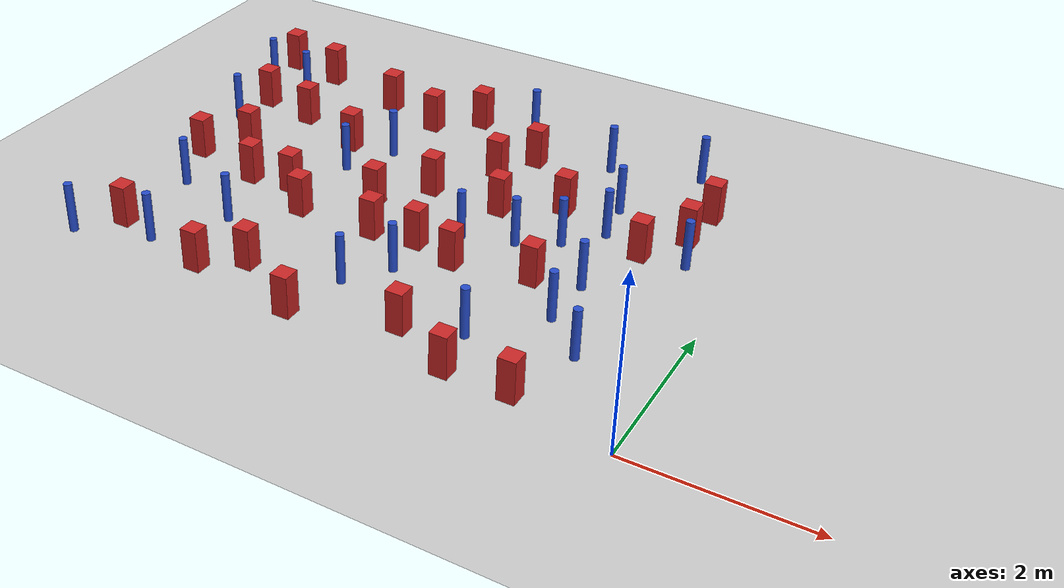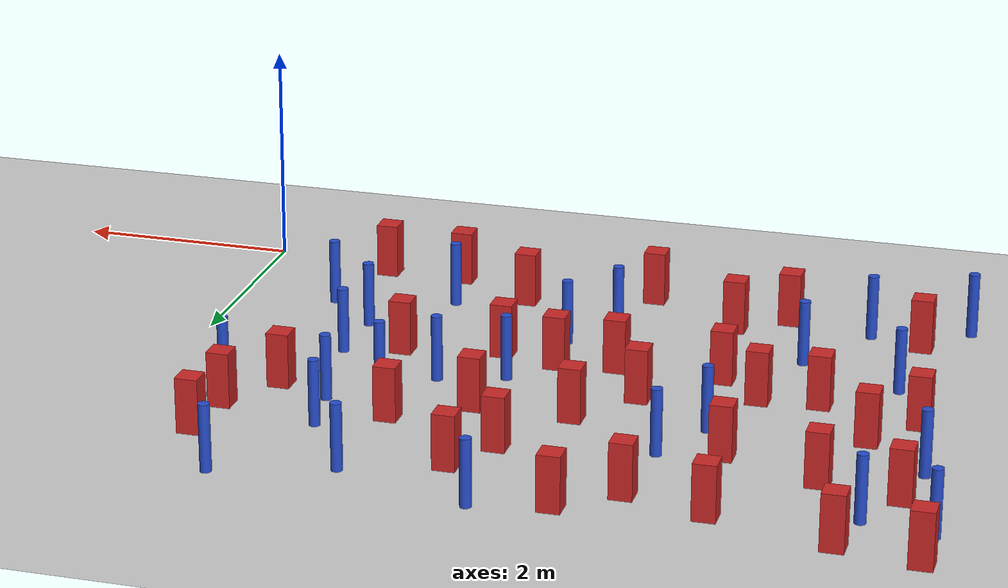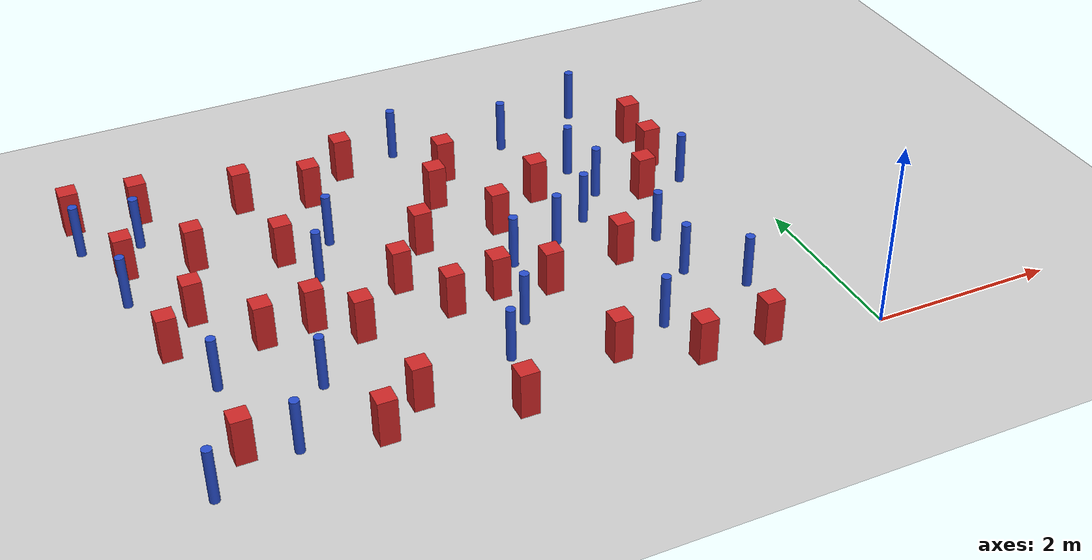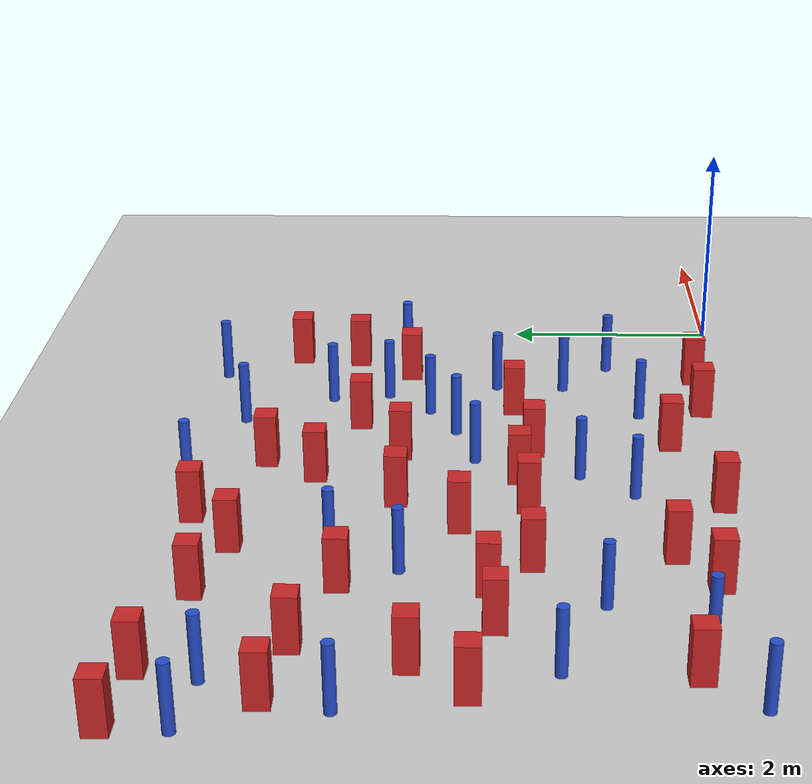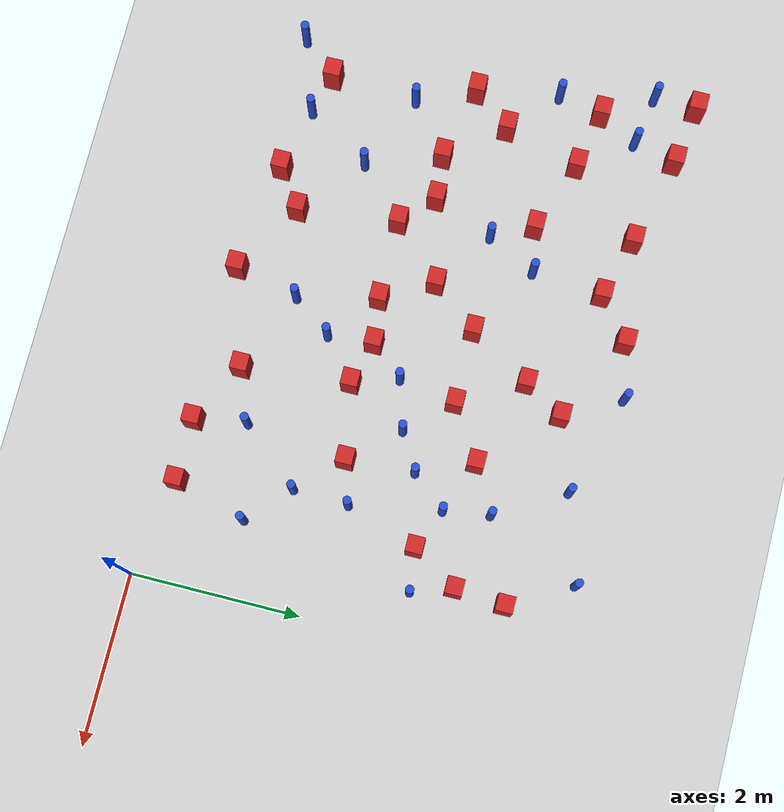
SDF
<sdf version="1.6">
 <world name="default">
  <model name="ground_plane">
   <static>1</static>
   <link name="link">
    <collision name="collision">
     <geometry><plane><normal>0 0 1</normal><size>100 100</size></plane></geometry>
     <surface><friction><ode><mu>100</mu><mu2>50</mu2></ode></friction></surface>
    </collision>
    <visual name="visual">
     <cast_shadows>0</cast_shadows>
     <geometry><plane><normal>0 0 1</normal><size>100 100</size></plane></geometry>
     <material>
      <ambient>1.0 1.0 1.0 1.0</ambient>
      <diffuse>0.8 0.8 0.8 1.0</diffuse>
      <specular>0.01 0.01 0.01 1.000000</specular>
     </material>
    </visual>
   </link>
  </model>
  <model name="square_post_obstacle4">
   <static>true</static>
   <pose>-1.89748749856 0.251138734312 1.91545236811e-07 -7.35059704564e-06 1.12565212e-07 2.39332434364e-05</pose>
   <link name="link">
    <pose>0 0 0.25 0 -0 0</pose>
    <inertial>
     <mass>100</mass>
     <inertia>
      <ixx>0.166667</ixx>
      <ixy>0</ixy>
      <ixz>0</ixz>
      <iyy>0.166667</iyy>
      <iyz>0</iyz>
      <izz>0.166667</izz>
     </inertia>
    </inertial>
    <collision name="collision"><geometry><box><size>.2 .2 .5</size></box></geometry></collision>
    <visual name="visual">
     <geometry><box><size>.2 .2 .5</size></box></geometry>
     <material>
      <script><name>Gazebo/Red</name><uri>file://media/materials/scripts/gazebo.material</uri></script>
     </material>
    </visual>
   </link>
  </model>
  <model name="square_post_obstacle5">
   <static>true</static>
   <pose>-4.62227693699 0.775634140724 1.91545236811e-07 -7.35059704564e-06 1.12565212e-07 2.39332434364e-05</pose>
   <link name="link">
    <pose>0 0 0.25 0 -0 0</pose>
    <inertial>
     <mass>100</mass>
     <inertia>
      <ixx>0.166667</ixx>
      <ixy>0</ixy>
      <ixz>0</ixz>
      <iyy>0.166667</iyy>
      <iyz>0</iyz>
      <izz>0.166667</izz>
     </inertia>
    </inertial>
    <collision name="collision"><geometry><box><size>.2 .2 .5</size></box></geometry></collision>
    <visual name="visual">
     <geometry><box><size>.2 .2 .5</size></box></geometry>
     <material>
      <script><name>Gazebo/Red</name><uri>file://media/materials/scripts/gazebo.material</uri></script>
     </material>
    </visual>
   </link>
  </model>
  <model name="pole_obstacle11">
   <static>true</static>
   <pose>-5.84389258286 0.627708138282 7.38925637345e-09 -8.47170692799e-08 1.24976765038e-08 -1.74513093018e-07</pose>
   <link name="link">
    <pose>0 0 0.3 0 -0 0</pose>
    <inertial>
     <mass>1</mass>
     <inertia><ixx>0.145833</ixx><ixy>0</ixy><ixz>0</ixz><iyy>0.145833</iyy><iyz>0</iyz><izz>0.125</izz></inertia>
    </inertial>
    <collision name="collision">
     <geometry><cylinder><radius>0.05</radius><length>.6</length></cylinder></geometry>
    </collision>
    <visual name="visual">
     <geometry><cylinder><radius>0.05</radius><length>.6</length></cylinder></geometry>
     <material>
      <script><name>Gazebo/Blue</name><uri>file://media/materials/scripts/gazebo.material</uri></script>
     </material>
    </visual>
   </link>
  </model>
  <model name="square_post_obstacle10">
   <static>true</static>
   <pose>-0.731796114299 3.62730903629 1.91545236811e-07 -7.35059704564e-06 1.12565212e-07 2.39332434364e-05</pose>
   <link name="link">
    <pose>0 0 0.25 0 -0 0</pose>
    <inertial>
     <mass>100</mass>
     <inertia>
      <ixx>0.166667</ixx>
      <ixy>0</ixy>
      <ixz>0</ixz>
      <iyy>0.166667</iyy>
      <iyz>0</iyz>
      <izz>0.166667</izz>
     </inertia>
    </inertial>
    <collision name="collision"><geometry><box><size>.2 .2 .5</size></box></geometry></collision>
    <visual name="visual">
     <geometry><box><size>.2 .2 .5</size></box></geometry>
     <material>
      <script><name>Gazebo/Red</name><uri>file://media/materials/scripts/gazebo.material</uri></script>
     </material>
    </visual>
   </link>
  </model>
  <model name="pole_obstacle14">
   <static>true</static>
   <pose>-6.38927039839 4.45445296587 7.38925637345e-09 -8.47170692796e-08 1.24976764786e-08 -1.74513093032e-07</pose>
   <link name="link">
    <pose>0 0 0.3 0 -0 0</pose>
    <inertial>
     <mass>1</mass>
     <inertia><ixx>0.145833</ixx><ixy>0</ixy><ixz>0</ixz><iyy>0.145833</iyy><iyz>0</iyz><izz>0.125</izz></inertia>
    </inertial>
    <collision name="collision">
     <geometry><cylinder><radius>0.05</radius><length>.6</length></cylinder></geometry>
    </collision>
    <visual name="visual">
     <geometry><cylinder><radius>0.05</radius><length>.6</length></cylinder></geometry>
     <material>
      <script><name>Gazebo/Blue</name><uri>file://media/materials/scripts/gazebo.material</uri></script>
     </material>
    </visual>
   </link>
  </model>
  <model name="square_post_obstacle12">
   <static>true</static>
   <pose>-2.81630306043 3.12755223096 1.91545236811e-07 -7.35059704564e-06 1.12565212e-07 2.39332434364e-05</pose>
   <link name="link">
    <pose>0 0 0.25 0 -0 0</pose>
    <inertial>
     <mass>100</mass>
     <inertia>
      <ixx>0.166667</ixx>
      <ixy>0</ixy>
      <ixz>0</ixz>
      <iyy>0.166667</iyy>
      <iyz>0</iyz>
      <izz>0.166667</izz>
     </inertia>
    </inertial>
    <collision name="collision"><geometry><box><size>.2 .2 .5</size></box></geometry></collision>
    <visual name="visual">
     <geometry><box><size>.2 .2 .5</size></box></geometry>
     <material>
      <script><name>Gazebo/Red</name><uri>file://media/materials/scripts/gazebo.material</uri></script>
     </material>
    </visual>
   </link>
  </model>
  <model name="square_post_obstacle14">
   <static>true</static>
   <pose>-3.69880755746 3.13031229309 1.91545236811e-07 -7.35059704564e-06 1.12565212e-07 2.39332434364e-05</pose>
   <link name="link">
    <pose>0 0 0.25 0 -0 0</pose>
    <inertial>
     <mass>100</mass>
     <inertia>
      <ixx>0.166667</ixx>
      <ixy>0</ixy>
      <ixz>0</ixz>
      <iyy>0.166667</iyy>
      <iyz>0</iyz>
      <izz>0.166667</izz>
     </inertia>
    </inertial>
    <collision name="collision"><geometry><box><size>.2 .2 .5</size></box></geometry></collision>
    <visual name="visual">
     <geometry><box><size>.2 .2 .5</size></box></geometry>
     <material>
      <script><name>Gazebo/Red</name><uri>file://media/materials/scripts/gazebo.material</uri></script>
     </material>
    </visual>
   </link>
  </model>
  <model name="pole_obstacle22">
   <static>true</static>
   <pose>-2.11474189386 4.6481504744 7.38925637345e-09 -8.47170692798e-08 1.24976765033e-08 -1.74513093019e-07</pose>
   <link name="link">
    <pose>0 0 0.3 0 -0 0</pose>
    <inertial>
     <mass>1</mass>
     <inertia><ixx>0.145833</ixx><ixy>0</ixy><ixz>0</ixz><iyy>0.145833</iyy><iyz>0</iyz><izz>0.125</izz></inertia>
    </inertial>
    <collision name="collision">
     <geometry><cylinder><radius>0.05</radius><length>.6</length></cylinder></geometry>
    </collision>
    <visual name="visual">
     <geometry><cylinder><radius>0.05</radius><length>.6</length></cylinder></geometry>
     <material>
      <script><name>Gazebo/Blue</name><uri>file://media/materials/scripts/gazebo.material</uri></script>
     </material>
    </visual>
   </link>
  </model>
  <model name="square_post_obstacle19">
   <static>true</static>
   <pose>-4.14506765037 2.57185852221 1.91545236811e-07 -7.35059704564e-06 1.12565212e-07 2.39332434364e-05</pose>
   <link name="link">
    <pose>0 0 0.25 0 -0 0</pose>
    <inertial>
     <mass>100</mass>
     <inertia>
      <ixx>0.166667</ixx>
      <ixy>0</ixy>
      <ixz>0</ixz>
      <iyy>0.166667</iyy>
      <iyz>0</iyz>
      <izz>0.166667</izz>
     </inertia>
    </inertial>
    <collision name="collision"><geometry><box><size>.2 .2 .5</size></box></geometry></collision>
    <visual name="visual">
     <geometry><box><size>.2 .2 .5</size></box></geometry>
     <material>
      <script><name>Gazebo/Red</name><uri>file://media/materials/scripts/gazebo.material</uri></script>
     </material>
    </visual>
   </link>
  </model>
  <model name="square_post_obstacle26">
   <static>true</static>
   <pose>-5.67506805907 2.28028572836 1.91545236811e-07 -7.35059704564e-06 1.12565212e-07 2.39332434364e-05</pose>
   <link name="link">
    <pose>0 0 0.25 0 -0 0</pose>
    <inertial>
     <mass>100</mass>
     <inertia>
      <ixx>0.166667</ixx>
      <ixy>0</ixy>
      <ixz>0</ixz>
      <iyy>0.166667</iyy>
      <iyz>0</iyz>
      <izz>0.166667</izz>
     </inertia>
    </inertial>
    <collision name="collision"><geometry><box><size>.2 .2 .5</size></box></geometry></collision>
    <visual name="visual">
     <geometry><box><size>.2 .2 .5</size></box></geometry>
     <material>
      <script><name>Gazebo/Red</name><uri>file://media/materials/scripts/gazebo.material</uri></script>
     </material>
    </visual>
   </link>
  </model>
  <model name="pole_obstacle39">
   <static>true</static>
   <pose>-3.23078613609 1.49463629291 7.38925637345e-09 -8.47170692796e-08 1.24976764713e-08 -1.74513093037e-07</pose>
   <link name="link">
    <pose>0 0 0.3 0 -0 0</pose>
    <inertial>
     <mass>1</mass>
     <inertia><ixx>0.145833</ixx><ixy>0</ixy><ixz>0</ixz><iyy>0.145833</iyy><iyz>0</iyz><izz>0.125</izz></inertia>
    </inertial>
    <collision name="collision">
     <geometry><cylinder><radius>0.05</radius><length>.6</length></cylinder></geometry>
    </collision>
    <visual name="visual">
     <geometry><cylinder><radius>0.05</radius><length>.6</length></cylinder></geometry>
     <material>
      <script><name>Gazebo/Blue</name><uri>file://media/materials/scripts/gazebo.material</uri></script>
     </material>
    </visual>
   </link>
  </model>
  <model name="pole_obstacle48">
   <static>true</static>
   <pose>-6.27960765973 1.79722253779 7.38925637345e-09 -8.471706928e-08 1.24976765134e-08 -1.74513093015e-07</pose>
   <link name="link">
    <pose>0 0 0.3 0 -0 0</pose>
    <inertial>
     <mass>1</mass>
     <inertia><ixx>0.145833</ixx><ixy>0</ixy><ixz>0</ixz><iyy>0.145833</iyy><iyz>0</iyz><izz>0.125</izz></inertia>
    </inertial>
    <collision name="collision">
     <geometry><cylinder><radius>0.05</radius><length>.6</length></cylinder></geometry>
    </collision>
    <visual name="visual">
     <geometry><cylinder><radius>0.05</radius><length>.6</length></cylinder></geometry>
     <material>
      <script><name>Gazebo/Blue</name><uri>file://media/materials/scripts/gazebo.material</uri></script>
     </material>
    </visual>
   </link>
  </model>
  <model name="square_post_obstacle39">
   <static>true</static>
   <pose>-2.75162709278 1.90201111876 1.91545236811e-07 -7.35059704564e-06 1.12565212e-07 2.39332434364e-05</pose>
   <link name="link">
    <pose>0 0 0.25 0 -0 0</pose>
    <inertial>
     <mass>100</mass>
     <inertia>
      <ixx>0.166667</ixx>
      <ixy>0</ixy>
      <ixz>0</ixz>
      <iyy>0.166667</iyy>
      <iyz>0</iyz>
      <izz>0.166667</izz>
     </inertia>
    </inertial>
    <collision name="collision"><geometry><box><size>.2 .2 .5</size></box></geometry></collision>
    <visual name="visual">
     <geometry><box><size>.2 .2 .5</size></box></geometry>
     <material>
      <script><name>Gazebo/Red</name><uri>file://media/materials/scripts/gazebo.material</uri></script>
     </material>
    </visual>
   </link>
  </model>
  <model name="pole_obstacle52">
   <static>true</static>
   <pose>-2.35016409131 2.62059731177 7.38925637345e-09 -8.47170692798e-08 1.24976764939e-08 -1.74513093025e-07</pose>
   <link name="link">
    <pose>0 0 0.3 0 -0 0</pose>
    <inertial>
     <mass>1</mass>
     <inertia><ixx>0.145833</ixx><ixy>0</ixy><ixz>0</ixz><iyy>0.145833</iyy><iyz>0</iyz><izz>0.125</izz></inertia>
    </inertial>
    <collision name="collision">
     <geometry><cylinder><radius>0.05</radius><length>.6</length></cylinder></geometry>
    </collision>
    <visual name="visual">
     <geometry><cylinder><radius>0.05</radius><length>.6</length></cylinder></geometry>
     <material>
      <script><name>Gazebo/Blue</name><uri>file://media/materials/scripts/gazebo.material</uri></script>
     </material>
    </visual>
   </link>
  </model>
  <model name="square_post_obstacle40">
   <static>true</static>
   <pose>-2.95716612603 4.34275981367 1.91545236811e-07 -7.35059704564e-06 1.12565212e-07 2.39332434364e-05</pose>
   <link name="link">
    <pose>0 0 0.25 0 -0 0</pose>
    <inertial>
     <mass>100</mass>
     <inertia>
      <ixx>0.166667</ixx>
      <ixy>0</ixy>
      <ixz>0</ixz>
      <iyy>0.166667</iyy>
      <iyz>0</iyz>
      <izz>0.166667</izz>
     </inertia>
    </inertial>
    <collision name="collision"><geometry><box><size>.2 .2 .5</size></box></geometry></collision>
    <visual name="visual">
     <geometry><box><size>.2 .2 .5</size></box></geometry>
     <material>
      <script><name>Gazebo/Red</name><uri>file://media/materials/scripts/gazebo.material</uri></script>
     </material>
    </visual>
   </link>
  </model>
  <model name="square_post_obstacle45">
   <static>true</static>
   <pose>-1.16351074433 0.250599036823 1.91545236811e-07 -7.35059704564e-06 1.12565212e-07 2.39332434364e-05</pose>
   <link name="link">
    <pose>0 0 0.25 0 -0 0</pose>
    <inertial>
     <mass>100</mass>
     <inertia>
      <ixx>0.166667</ixx>
      <ixy>0</ixy>
      <ixz>0</ixz>
      <iyy>0.166667</iyy>
      <iyz>0</iyz>
      <izz>0.166667</izz>
     </inertia>
    </inertial>
    <collision name="collision"><geometry><box><size>.2 .2 .5</size></box></geometry></collision>
    <visual name="visual">
     <geometry><box><size>.2 .2 .5</size></box></geometry>
     <material>
      <script><name>Gazebo/Red</name><uri>file://media/materials/scripts/gazebo.material</uri></script>
     </material>
    </visual>
   </link>
  </model>
  <model name="pole_obstacle61">
   <static>true</static>
   <pose>-4.55153687909 3.64306655368 7.38925637345e-09 -8.47170692798e-08 1.24976764937e-08 -1.74513093023e-07</pose>
   <link name="link">
    <pose>0 0 0.3 0 -0 0</pose>
    <inertial>
     <mass>1</mass>
     <inertia><ixx>0.145833</ixx><ixy>0</ixy><ixz>0</ixz><iyy>0.145833</iyy><iyz>0</iyz><izz>0.125</izz></inertia>
    </inertial>
    <collision name="collision">
     <geometry><cylinder><radius>0.05</radius><length>.6</length></cylinder></geometry>
    </collision>
    <visual name="visual">
     <geometry><cylinder><radius>0.05</radius><length>.6</length></cylinder></geometry>
     <material>
      <script><name>Gazebo/Blue</name><uri>file://media/materials/scripts/gazebo.material</uri></script>
     </material>
    </visual>
   </link>
  </model>
  <model name="square_post_obstacle47">
   <static>true</static>
   <pose>-5.94302883915 3.8439482471 1.91545236811e-07 -7.35059704564e-06 1.12565212e-07 2.39332434364e-05</pose>
   <link name="link">
    <pose>0 0 0.25 0 -0 0</pose>
    <inertial>
     <mass>100</mass>
     <inertia>
      <ixx>0.166667</ixx>
      <ixy>0</ixy>
      <ixz>0</ixz>
      <iyy>0.166667</iyy>
      <iyz>0</iyz>
      <izz>0.166667</izz>
     </inertia>
    </inertial>
    <collision name="collision"><geometry><box><size>.2 .2 .5</size></box></geometry></collision>
    <visual name="visual">
     <geometry><box><size>.2 .2 .5</size></box></geometry>
     <material>
      <script><name>Gazebo/Red</name><uri>file://media/materials/scripts/gazebo.material</uri></script>
     </material>
    </visual>
   </link>
  </model>
  <model name="pole_obstacle63">
   <static>true</static>
   <pose>-3.32186991952 5.02063966084 7.38925637345e-09 -8.47170692798e-08 1.24976765033e-08 -1.74513093019e-07</pose>
   <link name="link">
    <pose>0 0 0.3 0 -0 0</pose>
    <inertial>
     <mass>1</mass>
     <inertia><ixx>0.145833</ixx><ixy>0</ixy><ixz>0</ixz><iyy>0.145833</iyy><iyz>0</iyz><izz>0.125</izz></inertia>
    </inertial>
    <collision name="collision">
     <geometry><cylinder><radius>0.05</radius><length>.6</length></cylinder></geometry>
    </collision>
    <visual name="visual">
     <geometry><cylinder><radius>0.05</radius><length>.6</length></cylinder></geometry>
     <material>
      <script><name>Gazebo/Blue</name><uri>file://media/materials/scripts/gazebo.material</uri></script>
     </material>
    </visual>
   </link>
  </model>
  <model name="square_post_obstacle64">
   <static>true</static>
   <pose>-3.27478242242 2.04706250281 1.91545236811e-07 -7.35059704564e-06 1.12565212e-07 2.39332434364e-05</pose>
   <link name="link">
    <pose>0 0 0.25 0 -0 0</pose>
    <inertial>
     <mass>100</mass>
     <inertia>
      <ixx>0.166667</ixx>
      <ixy>0</ixy>
      <ixz>0</ixz>
      <iyy>0.166667</iyy>
      <iyz>0</iyz>
      <izz>0.166667</izz>
     </inertia>
    </inertial>
    <collision name="collision"><geometry><box><size>.2 .2 .5</size></box></geometry></collision>
    <visual name="visual">
     <geometry><box><size>.2 .2 .5</size></box></geometry>
     <material>
      <script><name>Gazebo/Red</name><uri>file://media/materials/scripts/gazebo.material</uri></script>
     </material>
    </visual>
   </link>
  </model>
  <model name="pole_obstacle80">
   <static>true</static>
   <pose>-1.55766322292 3.28972041259 7.38925637345e-09 -8.47170692799e-08 1.24976765053e-08 -1.74513093017e-07</pose>
   <link name="link">
    <pose>0 0 0.3 0 -0 0</pose>
    <inertial>
     <mass>1</mass>
     <inertia><ixx>0.145833</ixx><ixy>0</ixy><ixz>0</ixz><iyy>0.145833</iyy><iyz>0</iyz><izz>0.125</izz></inertia>
    </inertial>
    <collision name="collision">
     <geometry><cylinder><radius>0.05</radius><length>.6</length></cylinder></geometry>
    </collision>
    <visual name="visual">
     <geometry><cylinder><radius>0.05</radius><length>.6</length></cylinder></geometry>
     <material>
      <script><name>Gazebo/Blue</name><uri>file://media/materials/scripts/gazebo.material</uri></script>
     </material>
    </visual>
   </link>
  </model>
  <model name="pole_obstacle83">
   <static>true</static>
   <pose>-0.565187128425 3.14880887552 7.38925637345e-09 -8.47170692799e-08 1.2497676509e-08 -1.74513093016e-07</pose>
   <link name="link">
    <pose>0 0 0.3 0 -0 0</pose>
    <inertial>
     <mass>1</mass>
     <inertia><ixx>0.145833</ixx><ixy>0</ixy><ixz>0</ixz><iyy>0.145833</iyy><iyz>0</iyz><izz>0.125</izz></inertia>
    </inertial>
    <collision name="collision">
     <geometry><cylinder><radius>0.05</radius><length>.6</length></cylinder></geometry>
    </collision>
    <visual name="visual">
     <geometry><cylinder><radius>0.05</radius><length>.6</length></cylinder></geometry>
     <material>
      <script><name>Gazebo/Blue</name><uri>file://media/materials/scripts/gazebo.material</uri></script>
     </material>
    </visual>
   </link>
  </model>
  <model name="pole_obstacle86">
   <static>true</static>
   <pose>-6.70863360266 0.333708054163 7.38925637345e-09 -8.47170692798e-08 1.24976765003e-08 -1.7451309302e-07</pose>
   <link name="link">
    <pose>0 0 0.3 0 -0 0</pose>
    <inertial>
     <mass>1</mass>
     <inertia><ixx>0.145833</ixx><ixy>0</ixy><ixz>0</ixz><iyy>0.145833</iyy><iyz>0</iyz><izz>0.125</izz></inertia>
    </inertial>
    <collision name="collision">
     <geometry><cylinder><radius>0.05</radius><length>.6</length></cylinder></geometry>
    </collision>
    <visual name="visual">
     <geometry><cylinder><radius>0.05</radius><length>.6</length></cylinder></geometry>
     <material>
      <script><name>Gazebo/Blue</name><uri>file://media/materials/scripts/gazebo.material</uri></script>
     </material>
    </visual>
   </link>
  </model>
  <model name="square_post_obstacle74">
   <static>true</static>
   <pose>-2.18939458787 3.52759150365 1.91545236811e-07 -7.35059704564e-06 1.12565212e-07 2.39332434364e-05</pose>
   <link name="link">
    <pose>0 0 0.25 0 -0 0</pose>
    <inertial>
     <mass>100</mass>
     <inertia>
      <ixx>0.166667</ixx>
      <ixy>0</ixy>
      <ixz>0</ixz>
      <iyy>0.166667</iyy>
      <iyz>0</iyz>
      <izz>0.166667</izz>
     </inertia>
    </inertial>
    <collision name="collision"><geometry><box><size>.2 .2 .5</size></box></geometry></collision>
    <visual name="visual">
     <geometry><box><size>.2 .2 .5</size></box></geometry>
     <material>
      <script><name>Gazebo/Red</name><uri>file://media/materials/scripts/gazebo.material</uri></script>
     </material>
    </visual>
   </link>
  </model>
  <model name="square_post_obstacle75">
   <static>true</static>
   <pose>-0.680841271816 4.22345715497 1.91545236811e-07 -7.35059704564e-06 1.12565212e-07 2.39332434364e-05</pose>
   <link name="link">
    <pose>0 0 0.25 0 -0 0</pose>
    <inertial>
     <mass>100</mass>
     <inertia>
      <ixx>0.166667</ixx>
      <ixy>0</ixy>
      <ixz>0</ixz>
      <iyy>0.166667</iyy>
      <iyz>0</iyz>
      <izz>0.166667</izz>
     </inertia>
    </inertial>
    <collision name="collision"><geometry><box><size>.2 .2 .5</size></box></geometry></collision>
    <visual name="visual">
     <geometry><box><size>.2 .2 .5</size></box></geometry>
     <material>
      <script><name>Gazebo/Red</name><uri>file://media/materials/scripts/gazebo.material</uri></script>
     </material>
    </visual>
   </link>
  </model>
  <model name="square_post_obstacle79">
   <static>true</static>
   <pose>-5.14558469525 2.33104736996 1.91545236811e-07 -7.35059704564e-06 1.12565212e-07 2.39332434364e-05</pose>
   <link name="link">
    <pose>0 0 0.25 0 -0 0</pose>
    <inertial>
     <mass>100</mass>
     <inertia>
      <ixx>0.166667</ixx>
      <ixy>0</ixy>
      <ixz>0</ixz>
      <iyy>0.166667</iyy>
      <iyz>0</iyz>
      <izz>0.166667</izz>
     </inertia>
    </inertial>
    <collision name="collision"><geometry><box><size>.2 .2 .5</size></box></geometry></collision>
    <visual name="visual">
     <geometry><box><size>.2 .2 .5</size></box></geometry>
     <material>
      <script><name>Gazebo/Red</name><uri>file://media/materials/scripts/gazebo.material</uri></script>
     </material>
    </visual>
   </link>
  </model>
  <model name="pole_obstacle92">
   <static>true</static>
   <pose>-1.64137461007 3.83787931031 7.38925637345e-09 -8.47170692799e-08 1.24976765053e-08 -1.74513093017e-07</pose>
   <link name="link">
    <pose>0 0 0.3 0 -0 0</pose>
    <inertial>
     <mass>1</mass>
     <inertia><ixx>0.145833</ixx><ixy>0</ixy><ixz>0</ixz><iyy>0.145833</iyy><iyz>0</iyz><izz>0.125</izz></inertia>
    </inertial>
    <collision name="collision">
     <geometry><cylinder><radius>0.05</radius><length>.6</length></cylinder></geometry>
    </collision>
    <visual name="visual">
     <geometry><cylinder><radius>0.05</radius><length>.6</length></cylinder></geometry>
     <material>
      <script><name>Gazebo/Blue</name><uri>file://media/materials/scripts/gazebo.material</uri></script>
     </material>
    </visual>
   </link>
  </model>
  <model name="pole_obstacle93">
   <static>true</static>
   <pose>-1.09239050496 4.95958875108 7.38925637345e-09 -8.47170692799e-08 1.24976765033e-08 -1.74513093018e-07</pose>
   <link name="link">
    <pose>0 0 0.3 0 -0 0</pose>
    <inertial>
     <mass>1</mass>
     <inertia><ixx>0.145833</ixx><ixy>0</ixy><ixz>0</ixz><iyy>0.145833</iyy><iyz>0</iyz><izz>0.125</izz></inertia>
    </inertial>
    <collision name="collision">
     <geometry><cylinder><radius>0.05</radius><length>.6</length></cylinder></geometry>
    </collision>
    <visual name="visual">
     <geometry><cylinder><radius>0.05</radius><length>.6</length></cylinder></geometry>
     <material>
      <script><name>Gazebo/Blue</name><uri>file://media/materials/scripts/gazebo.material</uri></script>
     </material>
    </visual>
   </link>
  </model>
  <model name="pole_obstacle95">
   <static>true</static>
   <pose>-1.90915222378 2.87735750903 7.38925637345e-09 -8.47170692799e-08 1.24976765053e-08 -1.74513093017e-07</pose>
   <link name="link">
    <pose>0 0 0.3 0 -0 0</pose>
    <inertial>
     <mass>1</mass>
     <inertia><ixx>0.145833</ixx><ixy>0</ixy><ixz>0</ixz><iyy>0.145833</iyy><iyz>0</iyz><izz>0.125</izz></inertia>
    </inertial>
    <collision name="collision">
     <geometry><cylinder><radius>0.05</radius><length>.6</length></cylinder></geometry>
    </collision>
    <visual name="visual">
     <geometry><cylinder><radius>0.05</radius><length>.6</length></cylinder></geometry>
     <material>
      <script><name>Gazebo/Blue</name><uri>file://media/materials/scripts/gazebo.material</uri></script>
     </material>
    </visual>
   </link>
  </model>
  <model name="square_post_obstacle92">
   <static>true</static>
   <pose>-3.80533943414 1.97437732948 1.91545236811e-07 -7.35059704564e-06 1.12565212e-07 2.39332434364e-05</pose>
   <link name="link">
    <pose>0 0 0.25 0 -0 0</pose>
    <inertial>
     <mass>100</mass>
     <inertia>
      <ixx>0.166667</ixx>
      <ixy>0</ixy>
      <ixz>0</ixz>
      <iyy>0.166667</iyy>
      <iyz>0</iyz>
      <izz>0.166667</izz>
     </inertia>
    </inertial>
    <collision name="collision"><geometry><box><size>.2 .2 .5</size></box></geometry></collision>
    <visual name="visual">
     <geometry><box><size>.2 .2 .5</size></box></geometry>
     <material>
      <script><name>Gazebo/Red</name><uri>file://media/materials/scripts/gazebo.material</uri></script>
     </material>
    </visual>
   </link>
  </model>
  <model name="pole_obstacle106">
   <static>true</static>
   <pose>-1.99618119692 0.859127677159 7.38925637345e-09 -8.47170692798e-08 1.24976764937e-08 -1.74513093025e-07</pose>
   <link name="link">
    <pose>0 0 0.3 0 -0 0</pose>
    <inertial>
     <mass>1</mass>
     <inertia><ixx>0.145833</ixx><ixy>0</ixy><ixz>0</ixz><iyy>0.145833</iyy><iyz>0</iyz><izz>0.125</izz></inertia>
    </inertial>
    <collision name="collision">
     <geometry><cylinder><radius>0.05</radius><length>.6</length></cylinder></geometry>
    </collision>
    <visual name="visual">
     <geometry><cylinder><radius>0.05</radius><length>.6</length></cylinder></geometry>
     <material>
      <script><name>Gazebo/Blue</name><uri>file://media/materials/scripts/gazebo.material</uri></script>
     </material>
    </visual>
   </link>
  </model>
  <model name="square_post_obstacle109">
   <static>true</static>
   <pose>-1.8641865308 2.06874732705 1.91545236811e-07 -7.35059704564e-06 1.12565212e-07 2.39332434364e-05</pose>
   <link name="link">
    <pose>0 0 0.25 0 -0 0</pose>
    <inertial>
     <mass>100</mass>
     <inertia>
      <ixx>0.166667</ixx>
      <ixy>0</ixy>
      <ixz>0</ixz>
      <iyy>0.166667</iyy>
      <iyz>0</iyz>
      <izz>0.166667</izz>
     </inertia>
    </inertial>
    <collision name="collision"><geometry><box><size>.2 .2 .5</size></box></geometry></collision>
    <visual name="visual">
     <geometry><box><size>.2 .2 .5</size></box></geometry>
     <material>
      <script><name>Gazebo/Red</name><uri>file://media/materials/scripts/gazebo.material</uri></script>
     </material>
    </visual>
   </link>
  </model>
  <model name="square_post_obstacle121">
   <static>true</static>
   <pose>-6.26741059295 4.95533768679 1.91545236811e-07 -7.35059704564e-06 1.12565212e-07 2.39332434364e-05</pose>
   <link name="link">
    <pose>0 0 0.25 0 -0 0</pose>
    <inertial>
     <mass>100</mass>
     <inertia>
      <ixx>0.166667</ixx>
      <ixy>0</ixy>
      <ixz>0</ixz>
      <iyy>0.166667</iyy>
      <iyz>0</iyz>
      <izz>0.166667</izz>
     </inertia>
    </inertial>
    <collision name="collision"><geometry><box><size>.2 .2 .5</size></box></geometry></collision>
    <visual name="visual">
     <geometry><box><size>.2 .2 .5</size></box></geometry>
     <material>
      <script><name>Gazebo/Red</name><uri>file://media/materials/scripts/gazebo.material</uri></script>
     </material>
    </visual>
   </link>
  </model>
  <model name="pole_obstacle122">
   <static>true</static>
   <pose>-1.3571659195 2.22525959629 7.38925637345e-09 -8.47170692799e-08 1.24976765053e-08 -1.74513093017e-07</pose>
   <link name="link">
    <pose>0 0 0.3 0 -0 0</pose>
    <inertial>
     <mass>1</mass>
     <inertia><ixx>0.145833</ixx><ixy>0</ixy><ixz>0</ixz><iyy>0.145833</iyy><iyz>0</iyz><izz>0.125</izz></inertia>
    </inertial>
    <collision name="collision">
     <geometry><cylinder><radius>0.05</radius><length>.6</length></cylinder></geometry>
    </collision>
    <visual name="visual">
     <geometry><cylinder><radius>0.05</radius><length>.6</length></cylinder></geometry>
     <material>
      <script><name>Gazebo/Blue</name><uri>file://media/materials/scripts/gazebo.material</uri></script>
     </material>
    </visual>
   </link>
  </model>
  <model name="pole_obstacle124">
   <static>true</static>
   <pose>-4.85299016762 3.05665181485 7.38925637345e-09 -8.47170692798e-08 1.24976764937e-08 -1.74513093023e-07</pose>
   <link name="link">
    <pose>0 0 0.3 0 -0 0</pose>
    <inertial>
     <mass>1</mass>
     <inertia><ixx>0.145833</ixx><ixy>0</ixy><ixz>0</ixz><iyy>0.145833</iyy><iyz>0</iyz><izz>0.125</izz></inertia>
    </inertial>
    <collision name="collision">
     <geometry><cylinder><radius>0.05</radius><length>.6</length></cylinder></geometry>
    </collision>
    <visual name="visual">
     <geometry><cylinder><radius>0.05</radius><length>.6</length></cylinder></geometry>
     <material>
      <script><name>Gazebo/Blue</name><uri>file://media/materials/scripts/gazebo.material</uri></script>
     </material>
    </visual>
   </link>
  </model>
  <model name="square_post_obstacle122">
   <static>true</static>
   <pose>-5.07312868978 0.463365665928 1.91545236811e-07 -7.35059704564e-06 1.12565212e-07 2.39332434364e-05</pose>
   <link name="link">
    <pose>0 0 0.25 0 -0 0</pose>
    <inertial>
     <mass>100</mass>
     <inertia>
      <ixx>0.166667</ixx>
      <ixy>0</ixy>
      <ixz>0</ixz>
      <iyy>0.166667</iyy>
      <iyz>0</iyz>
      <izz>0.166667</izz>
     </inertia>
    </inertial>
    <collision name="collision"><geometry><box><size>.2 .2 .5</size></box></geometry></collision>
    <visual name="visual">
     <geometry><box><size>.2 .2 .5</size></box></geometry>
     <material>
      <script><name>Gazebo/Red</name><uri>file://media/materials/scripts/gazebo.material</uri></script>
     </material>
    </visual>
   </link>
  </model>
  <model name="square_post_obstacle132">
   <static>true</static>
   <pose>-5.08803674389 3.53918533268 1.91545236811e-07 -7.35059704564e-06 1.12565212e-07 2.39332434364e-05</pose>
   <link name="link">
    <pose>0 0 0.25 0 -0 0</pose>
    <inertial>
     <mass>100</mass>
     <inertia>
      <ixx>0.166667</ixx>
      <ixy>0</ixy>
      <ixz>0</ixz>
      <iyy>0.166667</iyy>
      <iyz>0</iyz>
      <izz>0.166667</izz>
     </inertia>
    </inertial>
    <collision name="collision"><geometry><box><size>.2 .2 .5</size></box></geometry></collision>
    <visual name="visual">
     <geometry><box><size>.2 .2 .5</size></box></geometry>
     <material>
      <script><name>Gazebo/Red</name><uri>file://media/materials/scripts/gazebo.material</uri></script>
     </material>
    </visual>
   </link>
  </model>
  <model name="square_post_obstacle134">
   <static>true</static>
   <pose>-6.19413285526 2.93830116468 1.91545236811e-07 -7.35059704564e-06 1.12565212e-07 2.39332434364e-05</pose>
   <link name="link">
    <pose>0 0 0.25 0 -0 0</pose>
    <inertial>
     <mass>100</mass>
     <inertia>
      <ixx>0.166667</ixx>
      <ixy>0</ixy>
      <ixz>0</ixz>
      <iyy>0.166667</iyy>
      <iyz>0</iyz>
      <izz>0.166667</izz>
     </inertia>
    </inertial>
    <collision name="collision"><geometry><box><size>.2 .2 .5</size></box></geometry></collision>
    <visual name="visual">
     <geometry><box><size>.2 .2 .5</size></box></geometry>
     <material>
      <script><name>Gazebo/Red</name><uri>file://media/materials/scripts/gazebo.material</uri></script>
     </material>
    </visual>
   </link>
  </model>
  <model name="square_post_obstacle141">
   <static>true</static>
   <pose>-6.32372855375 0.770082838208 1.91545236811e-07 -7.35059704564e-06 1.12565212e-07 2.39332434364e-05</pose>
   <link name="link">
    <pose>0 0 0.25 0 -0 0</pose>
    <inertial>
     <mass>100</mass>
     <inertia>
      <ixx>0.166667</ixx>
      <ixy>0</ixy>
      <ixz>0</ixz>
      <iyy>0.166667</iyy>
      <iyz>0</iyz>
      <izz>0.166667</izz>
     </inertia>
    </inertial>
    <collision name="collision"><geometry><box><size>.2 .2 .5</size></box></geometry></collision>
    <visual name="visual">
     <geometry><box><size>.2 .2 .5</size></box></geometry>
     <material>
      <script><name>Gazebo/Red</name><uri>file://media/materials/scripts/gazebo.material</uri></script>
     </material>
    </visual>
   </link>
  </model>
  <model name="square_post_obstacle145">
   <static>true</static>
   <pose>-3.98457567874 4.87307659192 1.91545236811e-07 -7.35059704564e-06 1.12565212e-07 2.39332434364e-05</pose>
   <link name="link">
    <pose>0 0 0.25 0 -0 0</pose>
    <inertial>
     <mass>100</mass>
     <inertia>
      <ixx>0.166667</ixx>
      <ixy>0</ixy>
      <ixz>0</ixz>
      <iyy>0.166667</iyy>
      <iyz>0</iyz>
      <izz>0.166667</izz>
     </inertia>
    </inertial>
    <collision name="collision"><geometry><box><size>.2 .2 .5</size></box></geometry></collision>
    <visual name="visual">
     <geometry><box><size>.2 .2 .5</size></box></geometry>
     <material>
      <script><name>Gazebo/Red</name><uri>file://media/materials/scripts/gazebo.material</uri></script>
     </material>
    </visual>
   </link>
  </model>
  <model name="square_post_obstacle147">
   <static>true</static>
   <pose>-4.76099658406 1.96708093912 1.91545236811e-07 -7.35059704564e-06 1.12565212e-07 2.39332434364e-05</pose>
   <link name="link">
    <pose>0 0 0.25 0 -0 0</pose>
    <inertial>
     <mass>100</mass>
     <inertia>
      <ixx>0.166667</ixx>
      <ixy>0</ixy>
      <ixz>0</ixz>
      <iyy>0.166667</iyy>
      <iyz>0</iyz>
      <izz>0.166667</izz>
     </inertia>
    </inertial>
    <collision name="collision"><geometry><box><size>.2 .2 .5</size></box></geometry></collision>
    <visual name="visual">
     <geometry><box><size>.2 .2 .5</size></box></geometry>
     <material>
      <script><name>Gazebo/Red</name><uri>file://media/materials/scripts/gazebo.material</uri></script>
     </material>
    </visual>
   </link>
  </model>
  <model name="square_post_obstacle150">
   <static>true</static>
   <pose>-3.24408104286 3.87257536972 1.91545236811e-07 -7.35059704564e-06 1.12565212e-07 2.39332434364e-05</pose>
   <link name="link">
    <pose>0 0 0.25 0 -0 0</pose>
    <inertial>
     <mass>100</mass>
     <inertia>
      <ixx>0.166667</ixx>
      <ixy>0</ixy>
      <ixz>0</ixz>
      <iyy>0.166667</iyy>
      <iyz>0</iyz>
      <izz>0.166667</izz>
     </inertia>
    </inertial>
    <collision name="collision"><geometry><box><size>.2 .2 .5</size></box></geometry></collision>
    <visual name="visual">
     <geometry><box><size>.2 .2 .5</size></box></geometry>
     <material>
      <script><name>Gazebo/Red</name><uri>file://media/materials/scripts/gazebo.material</uri></script>
     </material>
    </visual>
   </link>
  </model>
  <model name="pole_obstacle160">
   <static>true</static>
   <pose>-6.75060847083 3.45641110227 7.38925637345e-09 -8.47170692798e-08 1.24976764937e-08 -1.74513093023e-07</pose>
   <link name="link">
    <pose>0 0 0.3 0 -0 0</pose>
    <inertial>
     <mass>1</mass>
     <inertia><ixx>0.145833</ixx><ixy>0</ixy><ixz>0</ixz><iyy>0.145833</iyy><iyz>0</iyz><izz>0.125</izz></inertia>
    </inertial>
    <collision name="collision">
     <geometry><cylinder><radius>0.05</radius><length>.6</length></cylinder></geometry>
    </collision>
    <visual name="visual">
     <geometry><cylinder><radius>0.05</radius><length>.6</length></cylinder></geometry>
     <material>
      <script><name>Gazebo/Blue</name><uri>file://media/materials/scripts/gazebo.material</uri></script>
     </material>
    </visual>
   </link>
  </model>
  <model name="square_post_obstacle166">
   <static>true</static>
   <pose>-6.64171935148 3.98271372243 1.91545236811e-07 -7.35059704564e-06 1.12565212e-07 2.39332434364e-05</pose>
   <link name="link">
    <pose>0 0 0.25 0 -0 0</pose>
    <inertial>
     <mass>100</mass>
     <inertia>
      <ixx>0.166667</ixx>
      <ixy>0</ixy>
      <ixz>0</ixz>
      <iyy>0.166667</iyy>
      <iyz>0</iyz>
      <izz>0.166667</izz>
     </inertia>
    </inertial>
    <collision name="collision"><geometry><box><size>.2 .2 .5</size></box></geometry></collision>
    <visual name="visual">
     <geometry><box><size>.2 .2 .5</size></box></geometry>
     <material>
      <script><name>Gazebo/Red</name><uri>file://media/materials/scripts/gazebo.material</uri></script>
     </material>
    </visual>
   </link>
  </model>
  <model name="square_post_obstacle171">
   <static>true</static>
   <pose>-1.07530262768 3.08523914482 1.91545236811e-07 -7.35059704564e-06 1.12565212e-07 2.39332434364e-05</pose>
   <link name="link">
    <pose>0 0 0.25 0 -0 0</pose>
    <inertial>
     <mass>100</mass>
     <inertia>
      <ixx>0.166667</ixx>
      <ixy>0</ixy>
      <ixz>0</ixz>
      <iyy>0.166667</iyy>
      <iyz>0</iyz>
      <izz>0.166667</izz>
     </inertia>
    </inertial>
    <collision name="collision"><geometry><box><size>.2 .2 .5</size></box></geometry></collision>
    <visual name="visual">
     <geometry><box><size>.2 .2 .5</size></box></geometry>
     <material>
      <script><name>Gazebo/Red</name><uri>file://media/materials/scripts/gazebo.material</uri></script>
     </material>
    </visual>
   </link>
  </model>
  <model name="pole_obstacle174">
   <static>true</static>
   <pose>-5.36311041863 1.39897654851 7.38925637345e-09 -8.471706928e-08 1.24976765134e-08 -1.74513093015e-07</pose>
   <link name="link">
    <pose>0 0 0.3 0 -0 0</pose>
    <inertial>
     <mass>1</mass>
     <inertia><ixx>0.145833</ixx><ixy>0</ixy><ixz>0</ixz><iyy>0.145833</iyy><iyz>0</iyz><izz>0.125</izz></inertia>
    </inertial>
    <collision name="collision">
     <geometry><cylinder><radius>0.05</radius><length>.6</length></cylinder></geometry>
    </collision>
    <visual name="visual">
     <geometry><cylinder><radius>0.05</radius><length>.6</length></cylinder></geometry>
     <material>
      <script><name>Gazebo/Blue</name><uri>file://media/materials/scripts/gazebo.material</uri></script>
     </material>
    </visual>
   </link>
  </model>
  <model name="pole_obstacle178">
   <static>true</static>
   <pose>-6.99184215042 4.56206363648 7.38925637345e-09 -8.47170692796e-08 1.24976764786e-08 -1.74513093032e-07</pose>
   <link name="link">
    <pose>0 0 0.3 0 -0 0</pose>
    <inertial>
     <mass>1</mass>
     <inertia><ixx>0.145833</ixx><ixy>0</ixy><ixz>0</ixz><iyy>0.145833</iyy><iyz>0</iyz><izz>0.125</izz></inertia>
    </inertial>
    <collision name="collision">
     <geometry><cylinder><radius>0.05</radius><length>.6</length></cylinder></geometry>
    </collision>
    <visual name="visual">
     <geometry><cylinder><radius>0.05</radius><length>.6</length></cylinder></geometry>
     <material>
      <script><name>Gazebo/Blue</name><uri>file://media/materials/scripts/gazebo.material</uri></script>
     </material>
    </visual>
   </link>
  </model>
  <model name="square_post_obstacle188">
   <static>true</static>
   <pose>-5.20163484718 4.6951944443 1.91545236811e-07 -7.35059704564e-06 1.12565212e-07 2.39332434364e-05</pose>
   <link name="link">
    <pose>0 0 0.25 0 -0 0</pose>
    <inertial>
     <mass>100</mass>
     <inertia>
      <ixx>0.166667</ixx>
      <ixy>0</ixy>
      <ixz>0</ixz>
      <iyy>0.166667</iyy>
      <iyz>0</iyz>
      <izz>0.166667</izz>
     </inertia>
    </inertial>
    <collision name="collision"><geometry><box><size>.2 .2 .5</size></box></geometry></collision>
    <visual name="visual">
     <geometry><box><size>.2 .2 .5</size></box></geometry>
     <material>
      <script><name>Gazebo/Red</name><uri>file://media/materials/scripts/gazebo.material</uri></script>
     </material>
    </visual>
   </link>
  </model>
  <model name="square_post_obstacle196">
   <static>true</static>
   <pose>-2.62161727472 0.626056524398 1.91545236811e-07 -7.35059704564e-06 1.12565212e-07 2.39332434364e-05</pose>
   <link name="link">
    <pose>0 0 0.25 0 -0 0</pose>
    <inertial>
     <mass>100</mass>
     <inertia>
      <ixx>0.166667</ixx>
      <ixy>0</ixy>
      <ixz>0</ixz>
      <iyy>0.166667</iyy>
      <iyz>0</iyz>
      <izz>0.166667</izz>
     </inertia>
    </inertial>
    <collision name="collision"><geometry><box><size>.2 .2 .5</size></box></geometry></collision>
    <visual name="visual">
     <geometry><box><size>.2 .2 .5</size></box></geometry>
     <material>
      <script><name>Gazebo/Red</name><uri>file://media/materials/scripts/gazebo.material</uri></script>
     </material>
    </visual>
   </link>
  </model>
  <model name="square_post_obstacle201">
   <static>true</static>
   <pose>-6.9702861839 5.0671770014 1.91545236811e-07 -7.35059704564e-06 1.12565212e-07 2.39332434364e-05</pose>
   <link name="link">
    <pose>0 0 0.25 0 -0 0</pose>
    <inertial>
     <mass>100</mass>
     <inertia>
      <ixx>0.166667</ixx>
      <ixy>0</ixy>
      <ixz>0</ixz>
      <iyy>0.166667</iyy>
      <iyz>0</iyz>
      <izz>0.166667</izz>
     </inertia>
    </inertial>
    <collision name="collision"><geometry><box><size>.2 .2 .5</size></box></geometry></collision>
    <visual name="visual">
     <geometry><box><size>.2 .2 .5</size></box></geometry>
     <material>
      <script><name>Gazebo/Red</name><uri>file://media/materials/scripts/gazebo.material</uri></script>
     </material>
    </visual>
   </link>
  </model>
  <model name="square_post_obstacle205">
   <static>true</static>
   <pose>-6.5628135408 2.48099850166 1.91545236811e-07 -7.35059704564e-06 1.12565212e-07 2.39332434364e-05</pose>
   <link name="link">
    <pose>0 0 0.25 0 -0 0</pose>
    <inertial>
     <mass>100</mass>
     <inertia>
      <ixx>0.166667</ixx>
      <ixy>0</ixy>
      <ixz>0</ixz>
      <iyy>0.166667</iyy>
      <iyz>0</iyz>
      <izz>0.166667</izz>
     </inertia>
    </inertial>
    <collision name="collision"><geometry><box><size>.2 .2 .5</size></box></geometry></collision>
    <visual name="visual">
     <geometry><box><size>.2 .2 .5</size></box></geometry>
     <material>
      <script><name>Gazebo/Red</name><uri>file://media/materials/scripts/gazebo.material</uri></script>
     </material>
    </visual>
   </link>
  </model>
  <model name="pole_obstacle198">
   <static>true</static>
   <pose>-0.898592676607 1.10369273394 7.38925637345e-09 -8.47170692799e-08 1.24976765033e-08 -1.7451309302e-07</pose>
   <link name="link">
    <pose>0 0 0.3 0 -0 0</pose>
    <inertial>
     <mass>1</mass>
     <inertia><ixx>0.145833</ixx><ixy>0</ixy><ixz>0</ixz><iyy>0.145833</iyy><iyz>0</iyz><izz>0.125</izz></inertia>
    </inertial>
    <collision name="collision">
     <geometry><cylinder><radius>0.05</radius><length>.6</length></cylinder></geometry>
    </collision>
    <visual name="visual">
     <geometry><cylinder><radius>0.05</radius><length>.6</length></cylinder></geometry>
     <material>
      <script><name>Gazebo/Blue</name><uri>file://media/materials/scripts/gazebo.material</uri></script>
     </material>
    </visual>
   </link>
  </model>
  <model name="pole_obstacle199">
   <static>true</static>
   <pose>-3.58496259255 1.02489521789 7.38925637345e-09 -8.47170692793e-08 1.2497676438e-08 -1.74513093043e-07</pose>
   <link name="link">
    <pose>0 0 0.3 0 -0 0</pose>
    <inertial>
     <mass>1</mass>
     <inertia><ixx>0.145833</ixx><ixy>0</ixy><ixz>0</ixz><iyy>0.145833</iyy><iyz>0</iyz><izz>0.125</izz></inertia>
    </inertial>
    <collision name="collision">
     <geometry><cylinder><radius>0.05</radius><length>.6</length></cylinder></geometry>
    </collision>
    <visual name="visual">
     <geometry><cylinder><radius>0.05</radius><length>.6</length></cylinder></geometry>
     <material>
      <script><name>Gazebo/Blue</name><uri>file://media/materials/scripts/gazebo.material</uri></script>
     </material>
    </visual>
   </link>
  </model>
  <model name="pole_obstacle203">
   <static>true</static>
   <pose>-1.38038493109 1.56774844988 7.38925637345e-09 -8.471706928e-08 1.24976765079e-08 -1.74513093017e-07</pose>
   <link name="link">
    <pose>0 0 0.3 0 -0 0</pose>
    <inertial>
     <mass>1</mass>
     <inertia><ixx>0.145833</ixx><ixy>0</ixy><ixz>0</ixz><iyy>0.145833</iyy><iyz>0</iyz><izz>0.125</izz></inertia>
    </inertial>
    <collision name="collision">
     <geometry><cylinder><radius>0.05</radius><length>.6</length></cylinder></geometry>
    </collision>
    <visual name="visual">
     <geometry><cylinder><radius>0.05</radius><length>.6</length></cylinder></geometry>
     <material>
      <script><name>Gazebo/Blue</name><uri>file://media/materials/scripts/gazebo.material</uri></script>
     </material>
    </visual>
   </link>
  </model>
  <model name="pole_obstacle205">
   <static>true</static>
   <pose>-2.92920334107 2.44067061476 7.38925637345e-09 -8.47170692798e-08 1.24976764939e-08 -1.74513093025e-07</pose>
   <link name="link">
    <pose>0 0 0.3 0 -0 0</pose>
    <inertial>
     <mass>1</mass>
     <inertia><ixx>0.145833</ixx><ixy>0</ixy><ixz>0</ixz><iyy>0.145833</iyy><iyz>0</iyz><izz>0.125</izz></inertia>
    </inertial>
    <collision name="collision">
     <geometry><cylinder><radius>0.05</radius><length>.6</length></cylinder></geometry>
    </collision>
    <visual name="visual">
     <geometry><cylinder><radius>0.05</radius><length>.6</length></cylinder></geometry>
     <material>
      <script><name>Gazebo/Blue</name><uri>file://media/materials/scripts/gazebo.material</uri></script>
     </material>
    </visual>
   </link>
  </model>
  <model name="square_post_obstacle212">
   <static>true</static>
   <pose>-3.7658781351 0.271507110426 1.91545236811e-07 -7.35059704564e-06 1.12565212e-07 2.39332434364e-05</pose>
   <link name="link">
    <pose>0 0 0.25 0 -0 0</pose>
    <inertial>
     <mass>100</mass>
     <inertia>
      <ixx>0.166667</ixx>
      <ixy>0</ixy>
      <ixz>0</ixz>
      <iyy>0.166667</iyy>
      <iyz>0</iyz>
      <izz>0.166667</izz>
     </inertia>
    </inertial>
    <collision name="collision"><geometry><box><size>.2 .2 .5</size></box></geometry></collision>
    <visual name="visual">
     <geometry><box><size>.2 .2 .5</size></box></geometry>
     <material>
      <script><name>Gazebo/Red</name><uri>file://media/materials/scripts/gazebo.material</uri></script>
     </material>
    </visual>
   </link>
  </model>
  <model name="square_post_obstacle215">
   <static>true</static>
   <pose>-4.47745187101 4.48992926146 1.91545236811e-07 -7.35059704564e-06 1.12565212e-07 2.39332434364e-05</pose>
   <link name="link">
    <pose>0 0 0.25 0 -0 0</pose>
    <inertial>
     <mass>100</mass>
     <inertia>
      <ixx>0.166667</ixx>
      <ixy>0</ixy>
      <ixz>0</ixz>
      <iyy>0.166667</iyy>
      <iyz>0</iyz>
      <izz>0.166667</izz>
     </inertia>
    </inertial>
    <collision name="collision"><geometry><box><size>.2 .2 .5</size></box></geometry></collision>
    <visual name="visual">
     <geometry><box><size>.2 .2 .5</size></box></geometry>
     <material>
      <script><name>Gazebo/Red</name><uri>file://media/materials/scripts/gazebo.material</uri></script>
     </material>
    </visual>
   </link>
  </model>
 </world>
</sdf>
